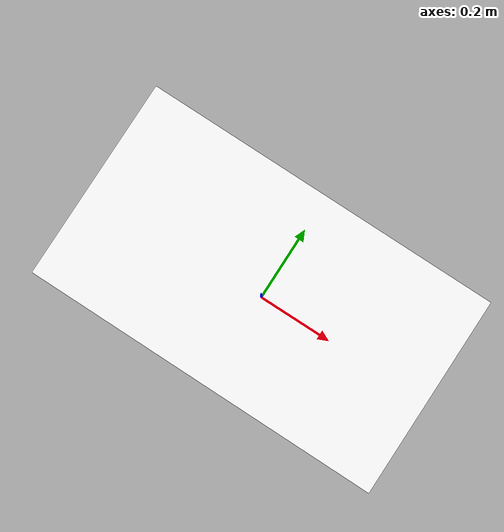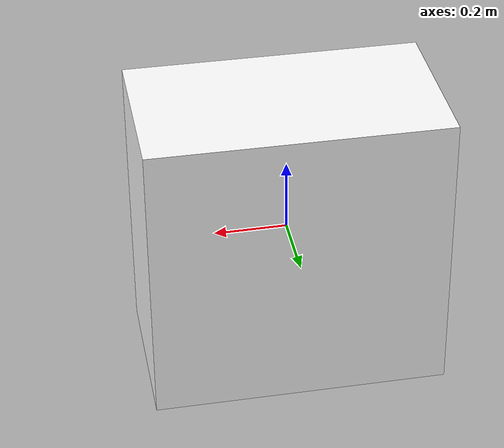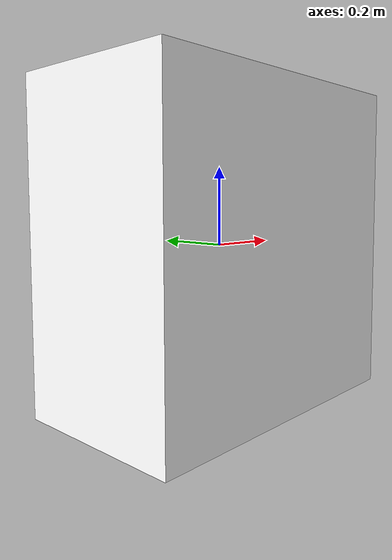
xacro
<?xml version="1.0"?>

<robot name="sentry_robot" xmlns:xacro="http://www.ros.org/wiki/xacro">

  <xacro:property name="PI" value="3.1415926"/>
  <xacro:property name="INCH" value="0.0254"/>

  <xacro:macro name="default_inertial" params="mass">
    <inertial>
      <mass value="${mass}" />
      <inertia ixx="0.01" ixy="0.0" ixz="0.0"
                    iyy="0.01" iyz="0.0" izz="0.01" />
    </inertial>
  </xacro:macro>

  <link name="dummy"/>

  <link name="base_link">
    <visual>
      <geometry>
        <box size="${32 * INCH} ${18 * INCH} ${32 * INCH}"/>
      </geometry>
      <origin rpy="0 0 0" xyz="0 0 0"/>
      <material name="white">
        <color rgba="1 1 1 1"/>
      </material>
    </visual>
    <collision>
      <geometry>
        <box size="${32 * INCH} ${18 * INCH} ${32 * INCH}"/>
      </geometry>
      <origin rpy="0 0 0" xyz="0 0 0"/>
    </collision>
    <xacro:default_inertial mass="8.2"/>
  </link>

  <joint name="dummy_joint" type="fixed">
     <parent link="dummy"/>
     <child link="base_link"/>
  </joint>

  <!-- Gazebo插件设置相关 -->
  <gazebo reference="base_link">
    <material>Gazebo/Yellow</material>
  </gazebo>
  <gazebo reference="imu_link">
    <material>Gazebo/BuildingFrame</material>
  </gazebo>
  <gazebo reference="livox_frame">
    <material>Gazebo/LightBlueLaser</material>
  </gazebo>

  <!-- Drive controller plugin-->
  <!-- https://github.com/ros-simulation/gazebo_ros_pkgs/wiki/ROS-2-Migration:-Planar-Move -->
  <gazebo>
    <plugin name="mecanum_controller" filename="libgazebo_ros_planar_move.so">
      <ros>
        <!-- Add a namespace -->
        <namespace>/</namespace>
        <!-- Remap the default topic -->
        <remapping>cmd_vel:=cmd_vel_chassis</remapping>
        <remapping>odom:=odom</remapping>
      </ros>

      <!-- Set control loop update rate -->
      <update_rate>100</update_rate>
      <!-- Set odom publish rate -->
      <publish_rate>10</publish_rate>

      <!-- Set if odom required -->
      <publish_odom>false</publish_odom>
      <publish_odom_tf>false</publish_odom_tf>

      <!-- Frame IDs -->
      <odometry_frame>odom</odometry_frame>
      <robot_base_frame>base_link</robot_base_frame>

      <!-- Set odom covariance -->
      <covariance_x>0.0001</covariance_x>
      <covariance_y>0.0001</covariance_y>
      <covariance_yaw>0.01</covariance_yaw>
    </plugin>
  </gazebo>

</robot>
